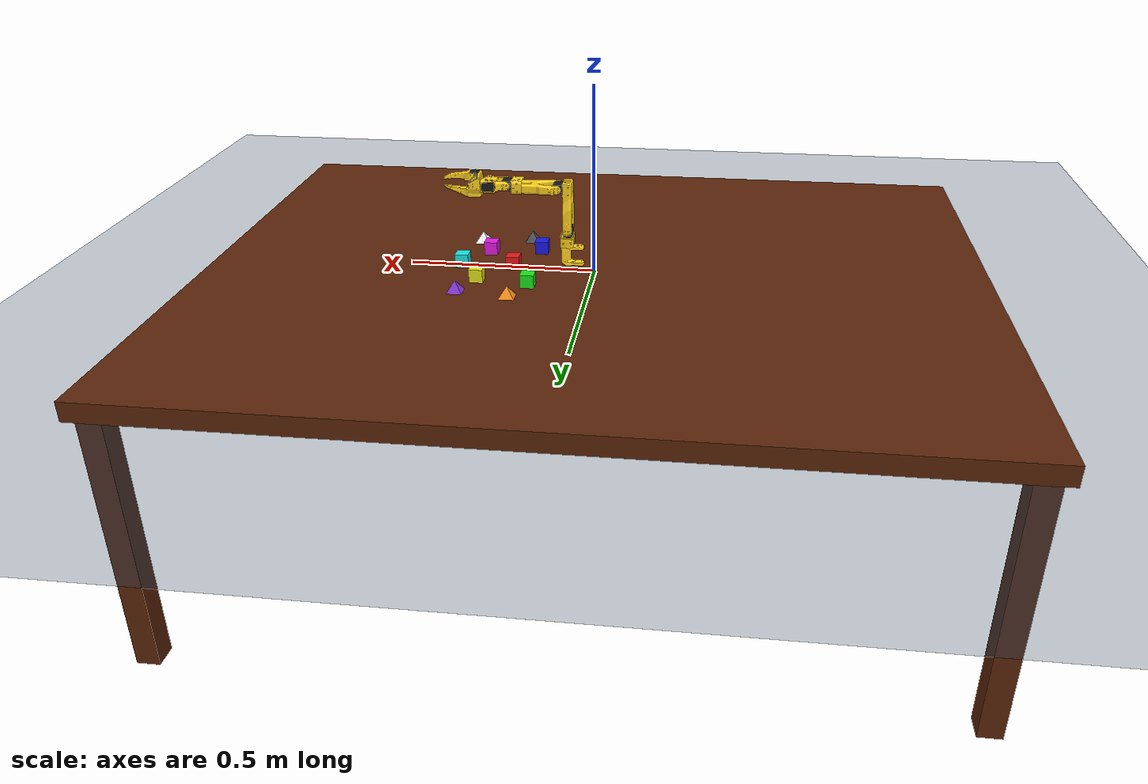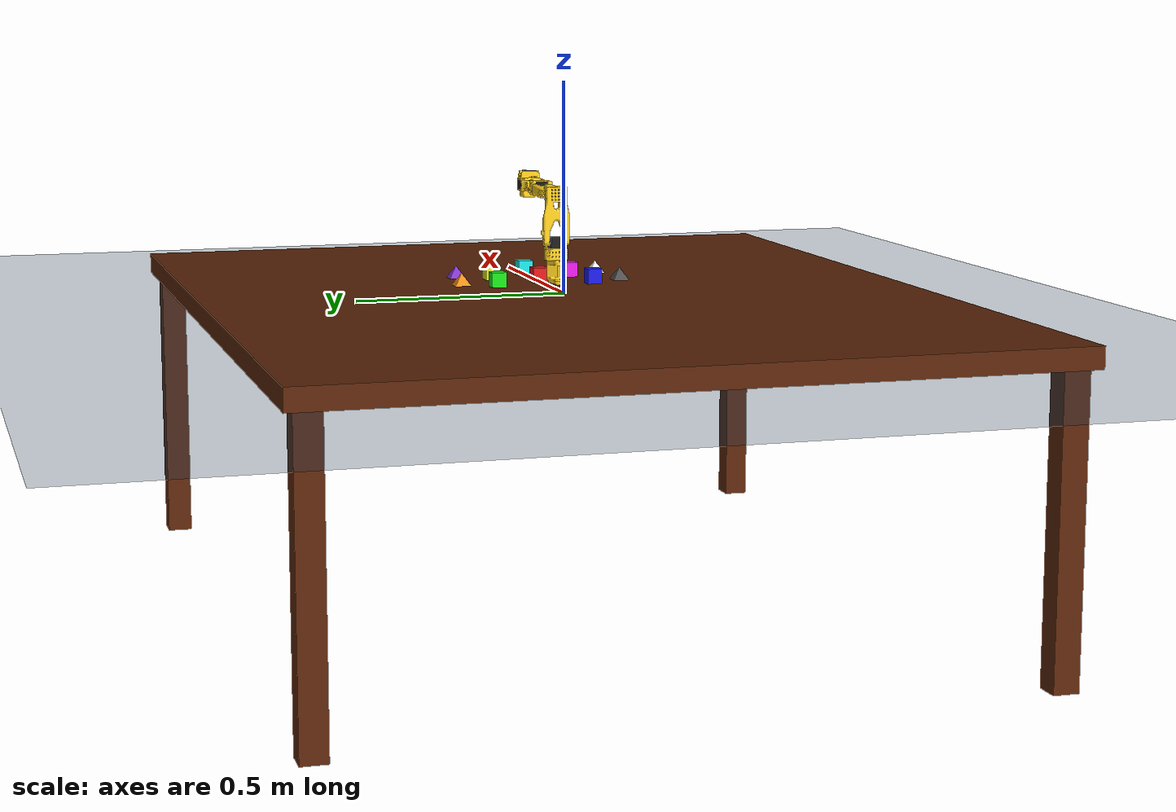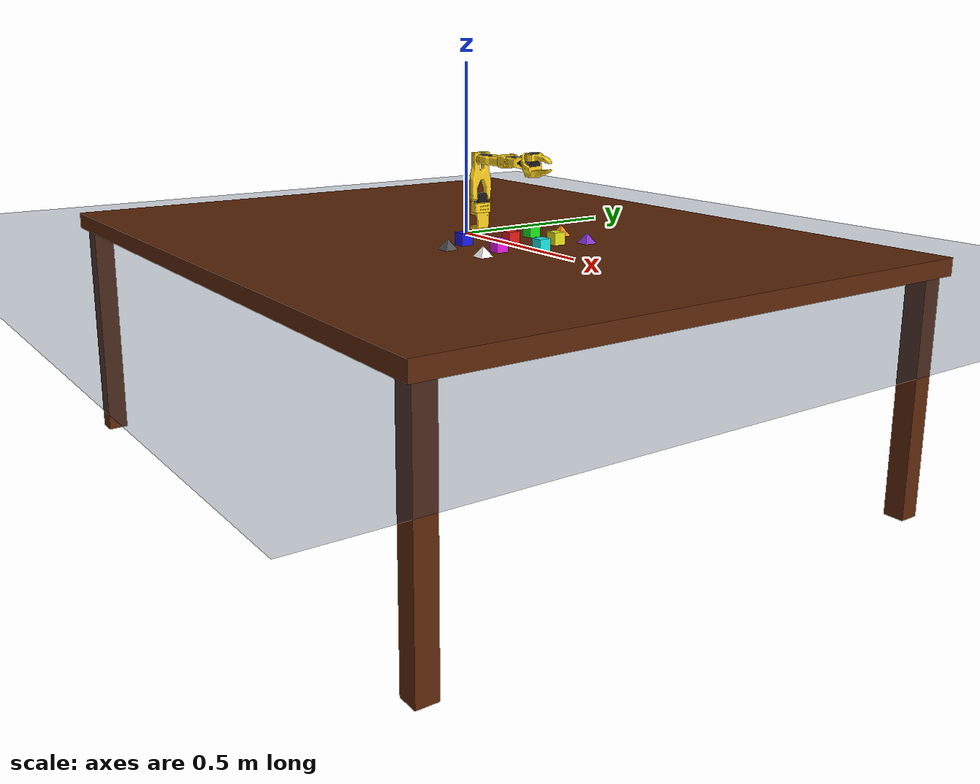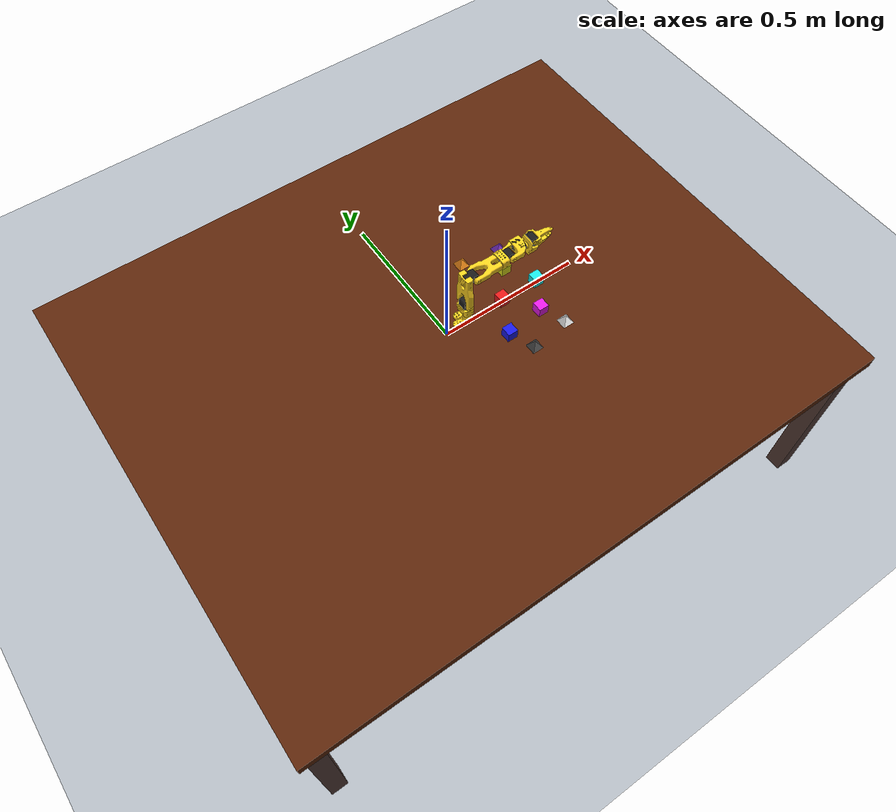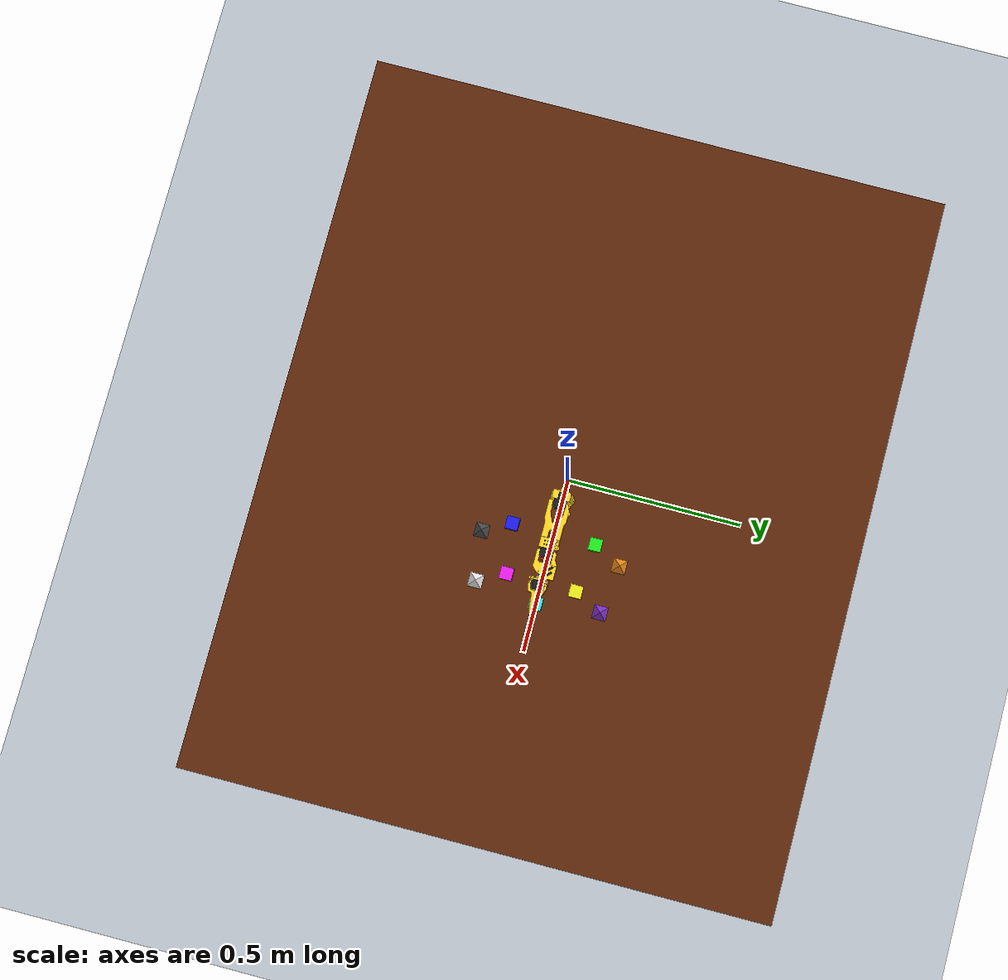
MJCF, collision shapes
<?xml version="1.0"?>
<mujoco model="dreamer_setup_scene">
  <compiler angle="radian" meshdir="assets" autolimits="true"/>
  <option gravity="0 0 -9.81" timestep="0.005" iterations="50" solver="Newton" tolerance="1e-10" cone="elliptic" impratio="10"/>
  <size memory="64M"/>

  <default>
    <default class="so101_new_calib">
      <joint damping="1" frictionloss="0.1" armature="0.005"/>
      <position kp="50"/>
      <default class="visual">
        <geom type="mesh" contype="0" conaffinity="0" group="2"/>
      </default>
      <default class="collision">
        <geom group="3"/>
      </default>
    </default>
    <default class="sts3215">
      <geom contype="0" conaffinity="0"/>
      <joint damping="0.60" frictionloss="0.052" armature="0.028"/>
      <position kp="499.11" kv="2.731" forcerange="-2.94 2.94"/>
    </default>
    <default class="object">
      <geom condim="4" friction="1.0 0.05 0.001" solref="0.02 1" solimp="0.9 0.95 0.001" group="1"/>
    </default>
  </default>

  <visual>
    <headlight diffuse="0.6 0.6 0.6" ambient="0.3 0.3 0.3" specular="0 0 0"/>
    <rgba haze="0.15 0.25 0.35 1"/>
    <global azimuth="120" elevation="-20" offwidth="640" offheight="480"/>
    <map znear="0.01" zfar="6"/>
  </visual>

  <asset>
    <texture name="skybox" type="skybox" builtin="gradient" rgb1="0.3 0.5 0.7" rgb2="0 0 0" width="512" height="3072"/>
    <texture name="floor_tex" type="2d" builtin="checker" rgb1="0.2 0.3 0.4" rgb2="0.1 0.2 0.3" width="300" height="300"/>
    <material name="floor_mat" texture="floor_tex" texrepeat="2 2" texuniform="true" reflectance="0.0"/>
    <texture name="wood_tex" type="2d" builtin="flat" rgb1="0.55 0.35 0.18" width="64" height="64"/>
    <material name="wood_mat" texture="wood_tex" rgba="0.65 0.42 0.22 1" specular="0.05" shininess="0.05"/>

    <mesh file="waveshare_mounting_plate_so101_v2.stl"/>
    <mesh file="sts3215_03a_v1.stl"/>
    <mesh file="motor_holder_so101_base_v1.stl"/>
    <mesh file="wrist_roll_follower_so101_v1.stl"/>
    <mesh file="moving_jaw_so101_v1.stl"/>
    <mesh file="base_motor_holder_so101_v1.stl"/>
    <mesh file="upper_arm_so101_v1.stl"/>
    <mesh file="wrist_roll_pitch_so101_v2.stl"/>
    <mesh file="under_arm_so101_v1.stl"/>
    <mesh file="rotation_pitch_so101_v1.stl"/>
    <mesh file="motor_holder_so101_wrist_v1.stl"/>
    <mesh file="sts3215_03a_no_horn_v1.stl"/>
    <mesh file="base_so101_v2.stl"/>
    <mesh name="plug_camera" file="SO-ARM100_Plug_camera.stl" scale="0.001 0.001 0.001"/>

    <material name="robot_yellow" rgba="1 0.82 0.12 1"/>
    <material name="robot_dark"   rgba="0.10 0.10 0.10 1"/>
    <material name="cam_plug"     rgba="0.20 0.20 0.20 1"/>

    <mesh name="pyramid" vertex="-0.020 -0.020 0  0.020 -0.020 0  0.020 0.020 0  -0.020 0.020 0  0 0 0.030"/>
  </asset>

  <worldbody>
    <light name="spot1" pos="0.6 0.6 1.6" dir="-0.4 -0.4 -1" castshadow="false" diffuse="0.7 0.7 0.7"/>
    <light name="spot2" pos="-0.6 -0.6 1.6" dir="0.4 0.4 -1" castshadow="false" diffuse="0.5 0.5 0.5"/>

    <geom name="floor" type="plane" pos="0 0 -0.05" size="3 3 0.1" material="floor_mat"/>

    <!-- Wooden table: top surface at z=0, robot mounts at z=0. -->
    <body name="table" pos="0 0 -0.025">
      <geom name="table_top" type="box" size="1.05 0.85 0.025" material="wood_mat" friction="1.0 0.05 0.001" condim="4"/>
      <geom name="table_leg_1" type="box" pos="1.0 0.8 -0.36" size="0.03 0.03 0.36" material="wood_mat"/>
      <geom name="table_leg_2" type="box" pos="-1.0 0.8 -0.36" size="0.03 0.03 0.36" material="wood_mat"/>
      <geom name="table_leg_3" type="box" pos="1.0 -0.8 -0.36" size="0.03 0.03 0.36" material="wood_mat"/>
      <geom name="table_leg_4" type="box" pos="-1.0 -0.8 -0.36" size="0.03 0.03 0.36" material="wood_mat"/>
    </body>

    <!-- SO-ARM101 arm -->
    <body name="base" pos="0 0 0" quat="1 0 0 0" childclass="so101_new_calib">
      <inertial pos="0.0137179 -5.19711e-05 0.0334843" mass="0.147" fullinertia="0.000114686 0.000136117 0.000130364 -4.59787e-07 4.97151e-06 9.75275e-08"/>
      <geom type="mesh" class="visual" pos="-0.00636471 -9.94414e-05 -0.0024" quat="0.5 0.5 0.5 0.5" mesh="base_motor_holder_so101_v1" material="robot_yellow"/>
      <geom type="mesh" class="visual" pos="-0.00636471 -8.97657e-09 -0.0024" quat="0.5 0.5 0.5 0.5" mesh="base_so101_v2" material="robot_yellow"/>
      <geom type="mesh" class="visual" pos="0.0263353 -8.97657e-09 0.0437" quat="1 0 0 0" mesh="sts3215_03a_v1" material="robot_dark"/>
      <geom type="mesh" class="visual" pos="-0.0309827 -0.000199441 0.0474" quat="0.5 0.5 0.5 0.5" mesh="waveshare_mounting_plate_so101_v2" material="robot_yellow"/>
      <site group="3" name="baseframe" pos="0 0 0"/>

      <body name="shoulder" pos="0.0388353 -8.97657e-09 0.0624" quat="3.56167e-16 1.22818e-15 -1 -4.14635e-16">
        <joint axis="0 0 1" name="shoulder_pan" type="hinge" range="-1.9198621771937616 1.9198621771937634" class="sts3215"/>
        <inertial pos="-0.0307604 -1.66727e-05 -0.0252713" mass="0.100006" fullinertia="8.3759e-05 8.10403e-05 2.39783e-05 7.55525e-08 -1.16342e-06 1.54663e-07"/>
        <geom type="mesh" class="visual" pos="-0.0303992 0.000422241 -0.0417" quat="0.5 0.5 0.5 -0.5" mesh="sts3215_03a_v1" material="robot_dark"/>
        <geom type="mesh" class="collision" pos="-0.0303992 0.000422241 -0.0417" quat="0.5 0.5 0.5 -0.5" mesh="sts3215_03a_v1" material="robot_dark"/>
        <geom type="mesh" class="visual" pos="-0.0675992 -0.000177759 0.0158499" quat="0.5 0.5 -0.5 0.5" mesh="motor_holder_so101_base_v1" material="robot_yellow"/>
        <geom type="mesh" class="collision" pos="-0.0675992 -0.000177759 0.0158499" quat="0.5 0.5 -0.5 0.5" mesh="motor_holder_so101_base_v1" material="robot_yellow"/>
        <geom type="mesh" class="visual" pos="0.0122008 2.22413e-05 0.0464" quat="0.707107 -0.707107 -0 0" mesh="rotation_pitch_so101_v1" material="robot_yellow"/>
        <geom type="mesh" class="collision" pos="0.0122008 2.22413e-05 0.0464" quat="0.707107 -0.707107 -0 0" mesh="rotation_pitch_so101_v1" material="robot_yellow"/>

        <body name="upper_arm" pos="-0.0303992 -0.0182778 -0.0542" quat="0.5 -0.5 -0.5 -0.5">
          <joint axis="0 0 1" name="shoulder_lift" type="hinge" range="-1.7453292519943224 1.7453292519943366" class="sts3215"/>
          <inertial pos="-0.0898471 -0.00838224 0.0184089" mass="0.103" fullinertia="4.08002e-05 0.000147318 0.000142487 -1.97819e-05 -4.03016e-08 8.97326e-09"/>
          <geom type="mesh" class="visual" pos="-0.11257 -0.0155 0.0187" quat="0 -0.707107 0.707107 0" mesh="sts3215_03a_v1" material="robot_dark"/>
          <geom type="mesh" class="collision" pos="-0.11257 -0.0155 0.0187" quat="0 -0.707107 0.707107 0" mesh="sts3215_03a_v1" material="robot_dark"/>
          <geom type="mesh" class="visual" pos="-0.065085 0.012 0.0182" quat="0 1 0 0" mesh="upper_arm_so101_v1" material="robot_yellow"/>
          <geom type="mesh" class="collision" pos="-0.065085 0.012 0.0182" quat="0 1 0 0" mesh="upper_arm_so101_v1" material="robot_yellow"/>

          <body name="lower_arm" pos="-0.11257 -0.028 0" quat="0.707107 0 0 0.707107">
            <joint axis="0 0 1" name="elbow_flex" type="hinge" range="-1.69 1.69" class="sts3215"/>
            <inertial pos="-0.0980701 0.00324376 0.0182831" mass="0.104" fullinertia="2.87438e-05 0.000159844 0.00014529 7.41152e-06 1.26409e-06 -4.90188e-08"/>
            <geom type="mesh" class="visual" pos="-0.0648499 -0.032 0.0182" quat="0 1 0 0" mesh="under_arm_so101_v1" material="robot_yellow"/>
            <geom type="mesh" class="collision" pos="-0.0648499 -0.032 0.0182" quat="0 1 0 0" mesh="under_arm_so101_v1" material="robot_yellow"/>
            <geom type="mesh" class="visual" pos="-0.0648499 -0.032 0.018" quat="0 -1 0 0" mesh="motor_holder_so101_wrist_v1" material="robot_yellow"/>
            <geom type="mesh" class="collision" pos="-0.0648499 -0.032 0.018" quat="0 -1 0 0" mesh="motor_holder_so101_wrist_v1" material="robot_yellow"/>
            <geom type="mesh" class="visual" pos="-0.1224 0.0052 0.0187" quat="0 0 1 0" mesh="sts3215_03a_v1" material="robot_dark"/>
            <geom type="mesh" class="collision" pos="-0.1224 0.0052 0.0187" quat="0 0 1 0" mesh="sts3215_03a_v1" material="robot_dark"/>

            <body name="wrist" pos="-0.1349 0.0052 0" quat="0.707107 0 0 -0.707107">
              <joint axis="0 0 1" name="wrist_flex" type="hinge" range="-1.6580628494556928 1.6580627293335335" class="sts3215"/>
              <inertial pos="-0.000103312 -0.0386143 0.0281156" mass="0.079" fullinertia="3.68263e-05 2.5391e-05 2.1e-05 1.7893e-08 -5.28128e-08 3.6412e-06"/>
              <geom type="mesh" class="visual" pos="0 -0.0424 0.0306" quat="0.5 0.5 0.5 -0.5" mesh="sts3215_03a_no_horn_v1" material="robot_dark"/>
              <geom type="mesh" class="collision" pos="0 -0.0424 0.0306" quat="0.5 0.5 0.5 -0.5" mesh="sts3215_03a_no_horn_v1" material="robot_dark"/>
              <geom type="mesh" class="visual" pos="0 -0.028 0.0181" quat="0.5 -0.5 -0.5 -0.5" mesh="wrist_roll_pitch_so101_v2" material="robot_yellow"/>
              <geom type="mesh" class="collision" pos="0 -0.028 0.0181" quat="0.5 -0.5 -0.5 -0.5" mesh="wrist_roll_pitch_so101_v2" material="robot_yellow"/>

              <body name="gripper" pos="0 -0.0611 0.0181" quat="0.0172091 -0.0172091 0.706897 0.706897">
                <joint axis="0 0 1" name="wrist_roll" type="hinge" range="-2.7438472969992493 2.841206309382605" class="sts3215"/>
                <inertial pos="0.000213627 0.000245138 -0.025187" mass="0.087" fullinertia="2.75087e-05 4.33657e-05 3.45059e-05 -3.35241e-07 -5.7352e-06 -5.17847e-08"/>
                <geom type="mesh" class="visual" pos="0.0077 0.0001 -0.0234" quat="0.707107 -0.707107 0 0" mesh="sts3215_03a_v1" material="robot_dark"/>
                <geom type="mesh" class="collision" pos="0.0077 0.0001 -0.0234" quat="0.707107 -0.707107 0 0" mesh="sts3215_03a_v1" material="robot_dark"/>
                <geom type="mesh" class="visual" pos="0 0 0.001" quat="0 1 0 0" mesh="wrist_roll_follower_so101_v1" material="robot_yellow"/>
                <geom type="mesh" class="collision" pos="0 0 0.001" quat="0 1 0 0" mesh="wrist_roll_follower_so101_v1" material="robot_yellow"/>
                <site group="3" name="gripperframe" pos="-0.0079 0 -0.0981274" quat="0.707107 0 0.707107 0"/>

                <!-- Wrist camera, mounted on the plug_camera bracket: +y side of gripper, slightly above and forward of the fingertips, angled forward+down. -->
                <body name="plug_camera_mount" pos="0.05 0.06 -0.04" euler="0 0 0">
                  <geom type="mesh" mesh="plug_camera" material="cam_plug" contype="0" conaffinity="0" group="2"/>
                  <camera name="wrist_cam" pos="0 0 0" euler="-0.233 1.012 0" fovy="70"/>
                </body>

                <body name="moving_jaw_so101_v1" pos="0.0202 0.0188 -0.0234" quat="0.707107 0.707107 0 0">
                  <joint axis="0 0 1" name="gripper" type="hinge" range="-0.17453297762778586 1.7453291995659765" class="sts3215"/>
                  <inertial pos="-0.00157495 -0.0300244 0.0192755" mass="0.012" fullinertia="6.61427e-06 1.89032e-06 5.28738e-06 -3.19807e-07 -5.90717e-09 -1.09945e-07"/>
                  <geom type="mesh" class="visual" pos="0 0 0.0189" quat="1 0 0 0" mesh="moving_jaw_so101_v1" material="robot_yellow"/>
                  <geom type="mesh" class="collision" pos="0 0 0.0189" quat="1 0 0 0" mesh="moving_jaw_so101_v1" material="robot_yellow"/>
                </body>
              </body>
            </body>
          </body>
        </body>
      </body>
    </body>

    <body name="object_0" pos="0.22  0.00 0.018">
      <freejoint name="object_0_free"/>
      <geom name="object_0" class="object" type="box" size="0.018 0.018 0.018" rgba="0.9 0.1 0.1 1" mass="0.025"/>
    </body>
    <body name="object_1" pos="0.16  0.12 0.018">
      <freejoint name="object_1_free"/>
      <geom name="object_1" class="object" type="box" size="0.018 0.018 0.018" rgba="0.1 0.9 0.1 1" mass="0.025"/>
    </body>
    <body name="object_2" pos="0.16 -0.12 0.018">
      <freejoint name="object_2_free"/>
      <geom name="object_2" class="object" type="box" size="0.018 0.018 0.018" rgba="0.1 0.1 0.9 1" mass="0.025"/>
    </body>
    <body name="object_3" pos="0.30  0.10 0.018">
      <freejoint name="object_3_free"/>
      <geom name="object_3" class="object" type="box" size="0.018 0.018 0.018" rgba="0.9 0.9 0.1 1" mass="0.025"/>
    </body>
    <body name="object_4" pos="0.30 -0.10 0.018">
      <freejoint name="object_4_free"/>
      <geom name="object_4" class="object" type="box" size="0.018 0.018 0.018" rgba="0.9 0.1 0.9 1" mass="0.025"/>
    </body>
    <body name="object_5" pos="0.36  0.00 0.018">
      <freejoint name="object_5_free"/>
      <geom name="object_5" class="object" type="box" size="0.018 0.018 0.018" rgba="0.1 0.9 0.9 1" mass="0.025"/>
    </body>
    <body name="object_6" pos="0.20  0.20 0.001">
      <freejoint name="object_6_free"/>
      <geom name="object_6" class="object" type="mesh" mesh="pyramid" rgba="0.95 0.55 0.10 1" mass="0.025"/>
    </body>
    <body name="object_7" pos="0.20 -0.20 0.001">
      <freejoint name="object_7_free"/>
      <geom name="object_7" class="object" type="mesh" mesh="pyramid" rgba="0.30 0.30 0.30 1" mass="0.025"/>
    </body>
    <body name="object_8" pos="0.34  0.18 0.001">
      <freejoint name="object_8_free"/>
      <geom name="object_8" class="object" type="mesh" mesh="pyramid" rgba="0.50 0.20 0.80 1" mass="0.025"/>
    </body>
    <body name="object_9" pos="0.34 -0.18 0.001">
      <freejoint name="object_9_free"/>
      <geom name="object_9" class="object" type="mesh" mesh="pyramid" rgba="0.95 0.95 0.95 1" mass="0.025"/>
    </body>

    <!-- Overhead camera (security-cam in corner of table, slightly above robot base, angled inward+down). -->
    <camera name="overhead" pos="0.85 0.85 0.40" xyaxes="-0.7071 0.7071 0  -0.198 -0.198 0.960" fovy="75"/>
    <camera name="overhead_close" pos="0.26 -0.1294 0.503" xyaxes="1 0 0  0 0.96593 0.25882" fovy="45"/>
  </worldbody>

  <actuator>
    <position class="sts3215" name="shoulder_pan"  joint="shoulder_pan"  forcerange="-3.35 3.35" ctrlrange="-1.91986 1.91986"/>
    <position class="sts3215" name="shoulder_lift" joint="shoulder_lift" forcerange="-3.35 3.35" ctrlrange="-1.74533 1.74533"/>
    <position class="sts3215" name="elbow_flex"   joint="elbow_flex"    forcerange="-3.35 3.35" ctrlrange="-1.69 1.69"/>
    <position class="sts3215" name="wrist_flex"   joint="wrist_flex"    forcerange="-3.35 3.35" ctrlrange="-1.65806 1.65806"/>
    <position class="sts3215" name="wrist_roll"   joint="wrist_roll"    forcerange="-3.35 3.35" ctrlrange="-2.74385 2.84121"/>
    <position class="sts3215" name="gripper"      joint="gripper"       forcerange="-3.35 3.35" ctrlrange="-0.17453 1.74533"/>
  </actuator>
</mujoco>
